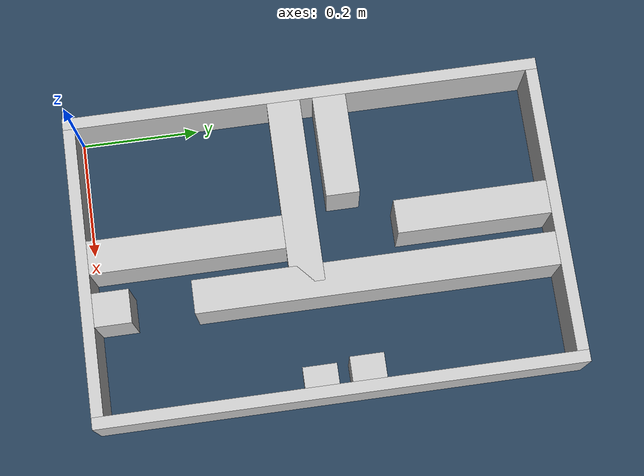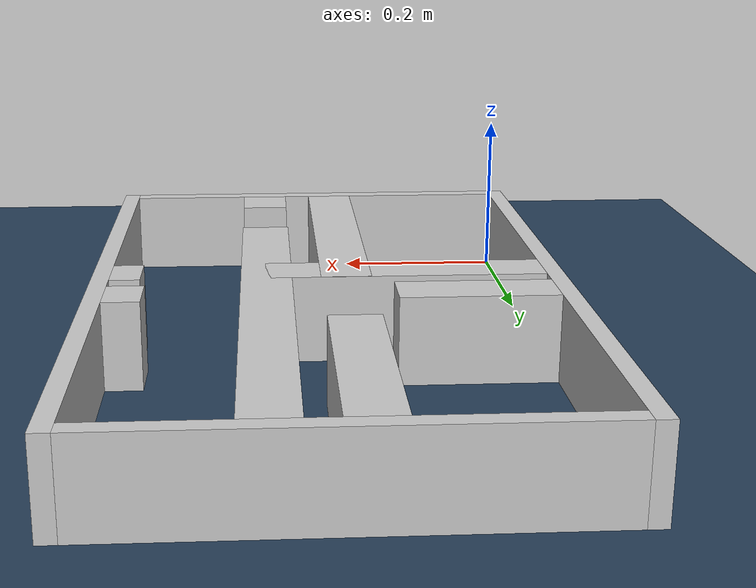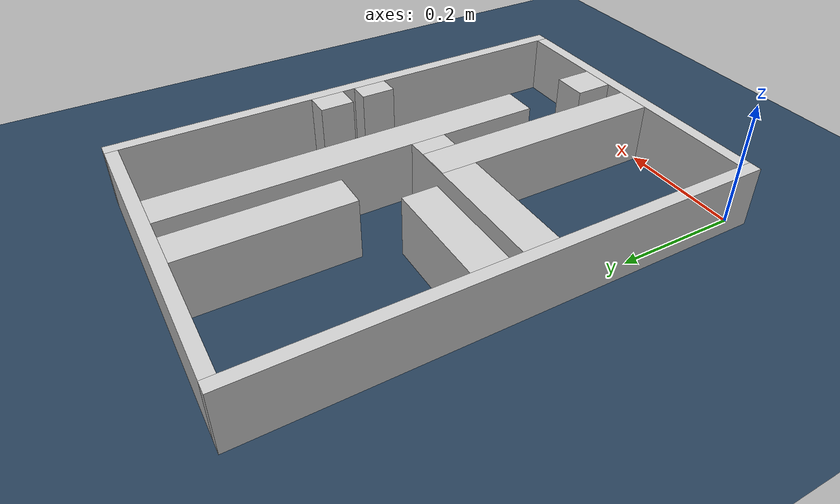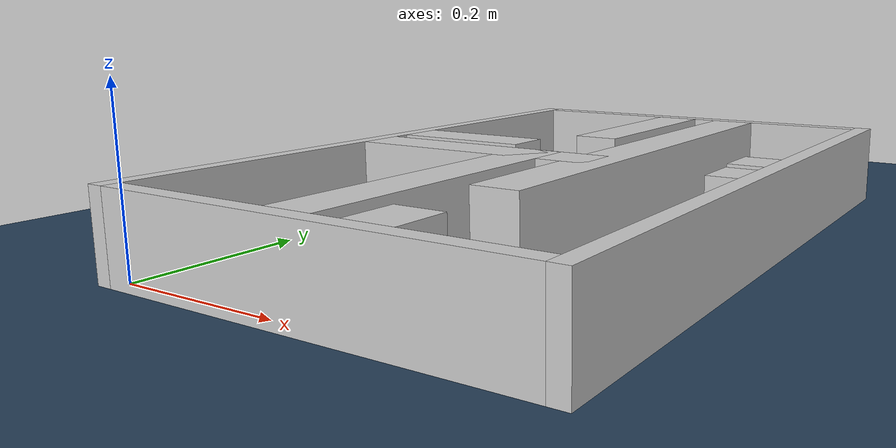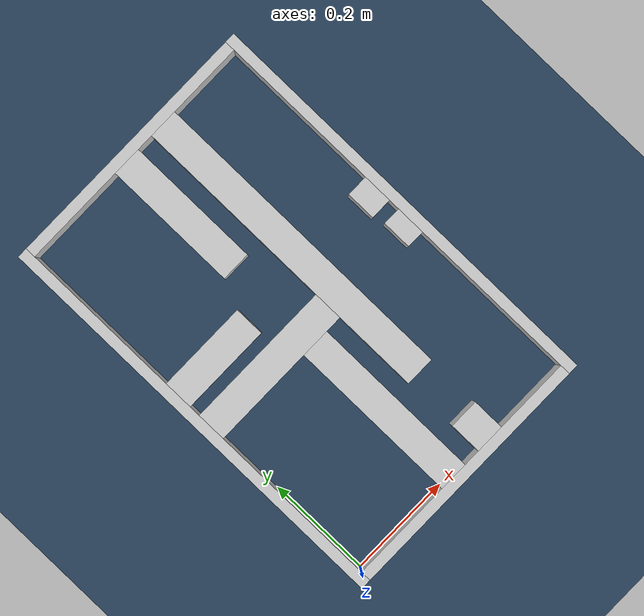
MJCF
<?xml version="1.0" ?>
<mujoco model="generated_real_template">
  <compiler angle="degree"/>
  <option timestep="0.002" integrator="implicitfast" iterations="100" cone="elliptic"/>
  <default>
    <geom density="1"/>
  </default>
  <asset>
    <texture builtin="gradient" height="3072" rgb1="0.3 0.5 0.7" rgb2="0 0 0" type="skybox" width="512"/>
    <texture builtin="checker" height="300" mark="edge" markrgb="0.8 0.8 0.8" name="groundplane" rgb1="0.2 0.3 0.4" rgb2="0.1 0.2 0.3" type="2d" width="300"/>
    <material name="groundplane" reflectance="0.2" texrepeat="5 5" texture="groundplane" texuniform="true"/>
  </asset>
  <worldbody>
    <light dir="0 0 -1" directional="true" pos="0 0 1.5"/>
    <geom name="floor" type="plane" condim="4" friction="0.5 0.005 0.001" material="groundplane" size="0 0 0.05"/>
    <body name="walls">
      <geom name="wall_boundary_left" type="box" condim="4" friction="1.0 0.005 0.0001" rgba="0.8 0.8 0.8 1" pos="-0.010000 0.387500 0.050000" euler="0 0 0.000000" size="0.010000 0.407500 0.050000"/>
      <geom name="wall_boundary_right" type="box" condim="4" friction="1.0 0.005 0.0001" rgba="0.8 0.8 0.8 1" pos="0.500000 0.387500 0.050000" euler="0 0 0.000000" size="0.010000 0.407500 0.050000"/>
      <geom name="wall_boundary_bottom" type="box" condim="4" friction="1.0 0.005 0.0001" rgba="0.8 0.8 0.8 1" pos="0.245000 -0.010000 0.050000" euler="0 0 0.000000" size="0.245000 0.010000 0.050000"/>
      <geom name="wall_boundary_top" type="box" condim="4" friction="1.0 0.005 0.0001" rgba="0.8 0.8 0.8 1" pos="0.245000 0.785000 0.050000" euler="0 0 0.000000" size="0.245000 0.010000 0.050000"/>
      <geom name="wall_inner_1_1" type="box" condim="4" friction="1.0 0.005 0.0001" rgba="0.8 0.8 0.8 1" pos="0.315537 0.030967 0.050000" euler="0 0 90.000000" size="0.030967 0.028500 0.050000"/>
      <geom name="wall_inner_1_2" type="box" condim="4" friction="1.0 0.005 0.0001" rgba="0.8 0.8 0.8 1" pos="0.315537 0.470302 0.050000" euler="0 0 90.000000" size="0.304698 0.028500 0.050000"/>
      <geom name="wall_inner_2_1" type="box" condim="4" friction="1.0 0.005 0.0001" rgba="0.8 0.8 0.8 1" pos="0.087514 0.434708 0.050000" euler="0 0 0.000000" size="0.087514 0.028500 0.050000"/>
      <geom name="wall_inner_2_2" type="box" condim="4" friction="1.0 0.005 0.0001" rgba="0.8 0.8 0.8 1" pos="0.469261 0.434708 0.050000" euler="0 0 0.000000" size="0.020739 0.028500 0.050000"/>
      <geom name="wall_inner_3_1" type="box" condim="4" friction="1.0 0.005 0.0001" rgba="0.8 0.8 0.8 1" pos="0.158292 0.356435 0.050000" euler="0 0 0.000000" size="0.158292 0.028500 0.050000"/>
      <geom name="wall_inner_3_2" type="box" condim="4" friction="1.0 0.005 0.0001" rgba="0.8 0.8 0.8 1" pos="0.472773 0.356435 0.050000" euler="0 0 0.000000" size="0.017227 0.028500 0.050000"/>
      <geom name="wall_inner_4_1" type="box" condim="4" friction="1.0 0.005 0.0001" rgba="0.8 0.8 0.8 1" pos="0.226256 0.192051 0.050000" euler="0 0 90.000000" size="0.192051 0.028500 0.050000"/>
      <geom name="wall_inner_4_2" type="box" condim="4" friction="1.0 0.005 0.0001" rgba="0.8 0.8 0.8 1" pos="0.226256 0.645551 0.050000" euler="0 0 90.000000" size="0.129449 0.028500 0.050000"/>
    </body>
  </worldbody>
</mujoco>
